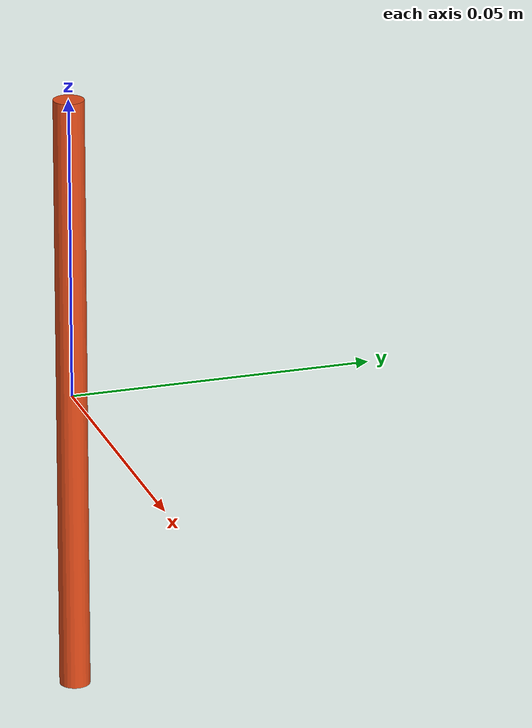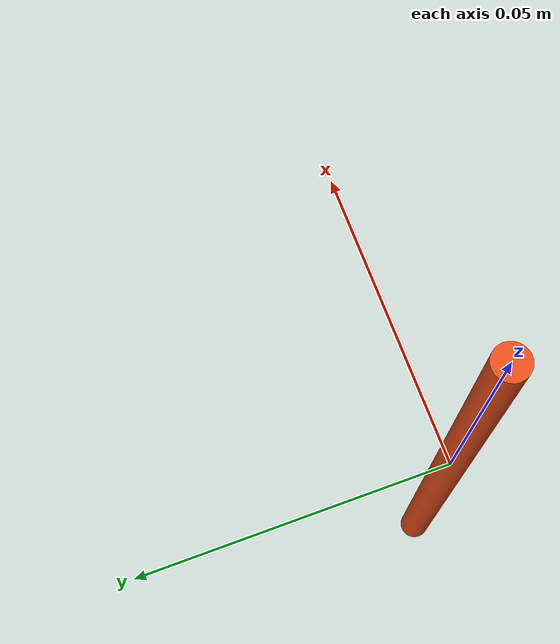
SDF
<?xml version="1.0" ?>
<!-- Cilindro D=5 mm x 100 mm (de pie).  Masa 50 g. Friccion mu=mu2=1.2. -->
<sdf version="1.10">
  <model name="cilindro_5">
    <pose>0 0 0 0 0 0</pose>
    <link name="link">
      <inertial>
        <mass>0.05</mass>
        <inertia><ixx>4.1745e-05</ixx><iyy>4.1745e-05</iyy><izz>1.5625e-07</izz>
          <ixy>0</ixy><ixz>0</ixz><iyz>0</iyz></inertia>
      </inertial>
      <collision name="collision">
        <geometry><cylinder><radius>0.0025</radius><length>0.1</length></cylinder></geometry>
        <surface>
          <friction><ode><mu>1.2</mu><mu2>1.2</mu2></ode></friction>
          <contact><ode><kp>1e6</kp><kd>1e2</kd></ode></contact>
        </surface>
      </collision>
      <visual name="visual">
        <geometry><cylinder><radius>0.0025</radius><length>0.1</length></cylinder></geometry>
        <material><ambient>0.9 0.3 0.1 1</ambient><diffuse>0.9 0.3 0.1 1</diffuse></material>
      </visual>
    </link>
  </model>
</sdf>
